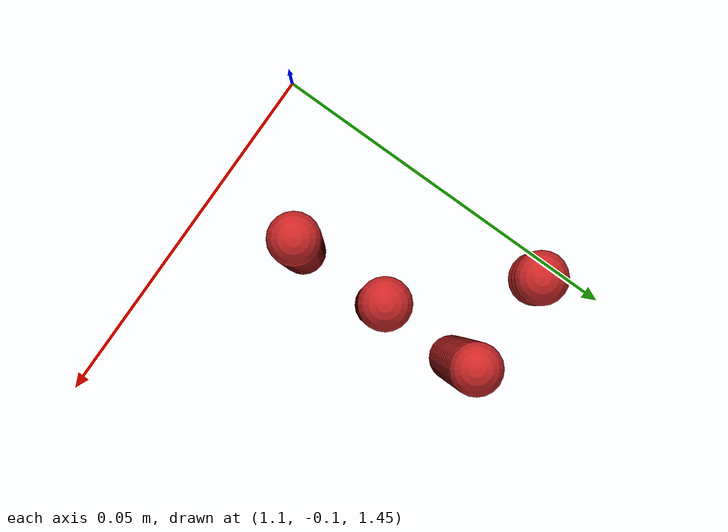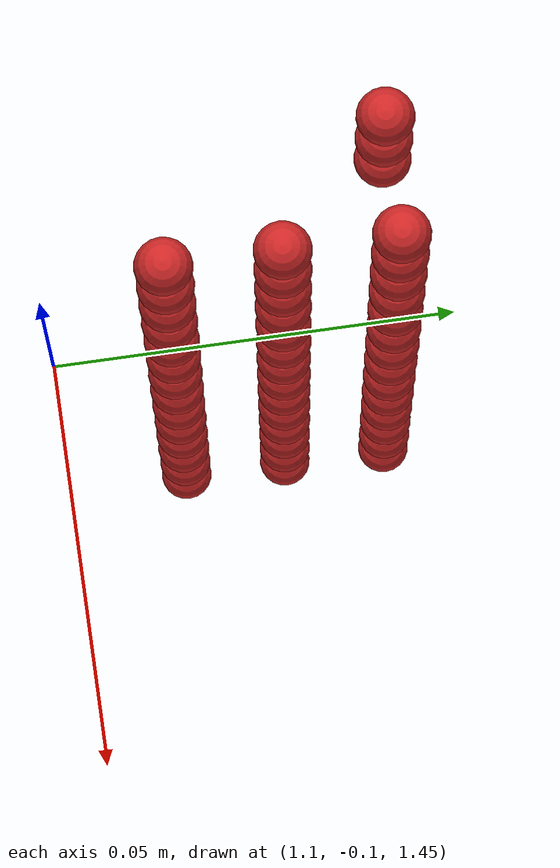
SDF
<sdf version="1.4">
 <world name="default">
  <model name="ground_plane">
   <static>1</static>
   <link name="link">
    <collision name="collision">
     <geometry><plane><normal>0 0 1</normal><size>100 100</size></plane></geometry>
     <surface><friction><ode><mu>100</mu><mu2>50</mu2></ode></friction></surface>
    </collision>
    <visual name="visual">
     <cast_shadows>0</cast_shadows>
     <geometry><plane><normal>0 0 1</normal><size>100 100</size></plane></geometry>
     <material>
      <script><uri>file://media/materials/scripts/gazebo.material</uri><name>Gazebo/Grey</name></script>
     </material>
    </visual>
    <velocity_decay><linear>0</linear><angular>0</angular></velocity_decay>
   </link>
  </model>
  <model name="sphere7">
   <pose>0.558760 -0.042781 0.732288 0 0 0</pose>
   <link name="link">
    <pose>0.558760 -0.042781 0.732288 0 0 0</pose>
    <inertial>
     <mass>0.001</mass>
     <inertia>
      <ixx>0.004</ixx>
      <ixy>0.000000</ixy>
      <ixz>0.000000</ixz>
      <iyy>0.004</iyy>
      <iyz>0.000000</iyz>
      <izz>0.004</izz>
     </inertia>
    </inertial>
    <collision name="collision">
     <surface>
      <contact><ode><kp>10000000000.000000</kp><kd>1</kd></ode></contact>
      <friction><ode><mu>0.01</mu><mu2>0.01</mu2></ode></friction>
     </surface>
     <geometry><sphere><radius>0.003</radius></sphere></geometry>
    </collision>
    <visual name="visual">
     <geometry><sphere><radius>0.003</radius></sphere></geometry>
     <material>
      <script><uri>file://media/materials/scripts/gazebo.material</uri><name>Gazebo/Red</name></script>
     </material>
    </visual>
   </link>
  </model>
  <model name="sphere11">
   <pose>0.558760 -0.036781 0.732288 0 0 0</pose>
   <link name="link">
    <pose>0.558760 -0.036781 0.732288 0 0 0</pose>
    <inertial>
     <mass>0.001</mass>
     <inertia>
      <ixx>0.004</ixx>
      <ixy>0.000000</ixy>
      <ixz>0.000000</ixz>
      <iyy>0.004</iyy>
      <iyz>0.000000</iyz>
      <izz>0.004</izz>
     </inertia>
    </inertial>
    <collision name="collision">
     <surface>
      <contact><ode><kp>10000000000.000000</kp><kd>1</kd></ode></contact>
      <friction><ode><mu>0.01</mu><mu2>0.01</mu2></ode></friction>
     </surface>
     <geometry><sphere><radius>0.003</radius></sphere></geometry>
    </collision>
    <visual name="visual">
     <geometry><sphere><radius>0.003</radius></sphere></geometry>
     <material>
      <script><uri>file://media/materials/scripts/gazebo.material</uri><name>Gazebo/Red</name></script>
     </material>
    </visual>
   </link>
  </model>
  <model name="sphere15">
   <pose>0.558760 -0.030781 0.732288 0 0 0</pose>
   <link name="link">
    <pose>0.558760 -0.030781 0.732288 0 0 0</pose>
    <inertial>
     <mass>0.001</mass>
     <inertia>
      <ixx>0.004</ixx>
      <ixy>0.000000</ixy>
      <ixz>0.000000</ixz>
      <iyy>0.004</iyy>
      <iyz>0.000000</iyz>
      <izz>0.004</izz>
     </inertia>
    </inertial>
    <collision name="collision">
     <surface>
      <contact><ode><kp>10000000000.000000</kp><kd>1</kd></ode></contact>
      <friction><ode><mu>0.01</mu><mu2>0.01</mu2></ode></friction>
     </surface>
     <geometry><sphere><radius>0.003</radius></sphere></geometry>
    </collision>
    <visual name="visual">
     <geometry><sphere><radius>0.003</radius></sphere></geometry>
     <material>
      <script><uri>file://media/materials/scripts/gazebo.material</uri><name>Gazebo/Red</name></script>
     </material>
    </visual>
   </link>
  </model>
  <model name="sphere23">
   <pose>0.558760 -0.042781 0.738288 0 0 0</pose>
   <link name="link">
    <pose>0.558760 -0.042781 0.738288 0 0 0</pose>
    <inertial>
     <mass>0.001</mass>
     <inertia>
      <ixx>0.004</ixx>
      <ixy>0.000000</ixy>
      <ixz>0.000000</ixz>
      <iyy>0.004</iyy>
      <iyz>0.000000</iyz>
      <izz>0.004</izz>
     </inertia>
    </inertial>
    <collision name="collision">
     <surface>
      <contact><ode><kp>10000000000.000000</kp><kd>1</kd></ode></contact>
      <friction><ode><mu>0.01</mu><mu2>0.01</mu2></ode></friction>
     </surface>
     <geometry><sphere><radius>0.003</radius></sphere></geometry>
    </collision>
    <visual name="visual">
     <geometry><sphere><radius>0.003</radius></sphere></geometry>
     <material>
      <script><uri>file://media/materials/scripts/gazebo.material</uri><name>Gazebo/Red</name></script>
     </material>
    </visual>
   </link>
  </model>
  <model name="sphere27">
   <pose>0.558760 -0.036781 0.738288 0 0 0</pose>
   <link name="link">
    <pose>0.558760 -0.036781 0.738288 0 0 0</pose>
    <inertial>
     <mass>0.001</mass>
     <inertia>
      <ixx>0.004</ixx>
      <ixy>0.000000</ixy>
      <ixz>0.000000</ixz>
      <iyy>0.004</iyy>
      <iyz>0.000000</iyz>
      <izz>0.004</izz>
     </inertia>
    </inertial>
    <collision name="collision">
     <surface>
      <contact><ode><kp>10000000000.000000</kp><kd>1</kd></ode></contact>
      <friction><ode><mu>0.01</mu><mu2>0.01</mu2></ode></friction>
     </surface>
     <geometry><sphere><radius>0.003</radius></sphere></geometry>
    </collision>
    <visual name="visual">
     <geometry><sphere><radius>0.003</radius></sphere></geometry>
     <material>
      <script><uri>file://media/materials/scripts/gazebo.material</uri><name>Gazebo/Red</name></script>
     </material>
    </visual>
   </link>
  </model>
  <model name="sphere31">
   <pose>0.558760 -0.030781 0.738288 0 0 0</pose>
   <link name="link">
    <pose>0.558760 -0.030781 0.738288 0 0 0</pose>
    <inertial>
     <mass>0.001</mass>
     <inertia>
      <ixx>0.004</ixx>
      <ixy>0.000000</ixy>
      <ixz>0.000000</ixz>
      <iyy>0.004</iyy>
      <iyz>0.000000</iyz>
      <izz>0.004</izz>
     </inertia>
    </inertial>
    <collision name="collision">
     <surface>
      <contact><ode><kp>10000000000.000000</kp><kd>1</kd></ode></contact>
      <friction><ode><mu>0.01</mu><mu2>0.01</mu2></ode></friction>
     </surface>
     <geometry><sphere><radius>0.003</radius></sphere></geometry>
    </collision>
    <visual name="visual">
     <geometry><sphere><radius>0.003</radius></sphere></geometry>
     <material>
      <script><uri>file://media/materials/scripts/gazebo.material</uri><name>Gazebo/Red</name></script>
     </material>
    </visual>
   </link>
  </model>
  <model name="sphere39">
   <pose>0.558760 -0.042781 0.744288 0 0 0</pose>
   <link name="link">
    <pose>0.558760 -0.042781 0.744288 0 0 0</pose>
    <inertial>
     <mass>0.001</mass>
     <inertia>
      <ixx>0.004</ixx>
      <ixy>0.000000</ixy>
      <ixz>0.000000</ixz>
      <iyy>0.004</iyy>
      <iyz>0.000000</iyz>
      <izz>0.004</izz>
     </inertia>
    </inertial>
    <collision name="collision">
     <surface>
      <contact><ode><kp>10000000000.000000</kp><kd>1</kd></ode></contact>
      <friction><ode><mu>0.01</mu><mu2>0.01</mu2></ode></friction>
     </surface>
     <geometry><sphere><radius>0.003</radius></sphere></geometry>
    </collision>
    <visual name="visual">
     <geometry><sphere><radius>0.003</radius></sphere></geometry>
     <material>
      <script><uri>file://media/materials/scripts/gazebo.material</uri><name>Gazebo/Red</name></script>
     </material>
    </visual>
   </link>
  </model>
  <model name="sphere43">
   <pose>0.558760 -0.036781 0.744288 0 0 0</pose>
   <link name="link">
    <pose>0.558760 -0.036781 0.744288 0 0 0</pose>
    <inertial>
     <mass>0.001</mass>
     <inertia>
      <ixx>0.004</ixx>
      <ixy>0.000000</ixy>
      <ixz>0.000000</ixz>
      <iyy>0.004</iyy>
      <iyz>0.000000</iyz>
      <izz>0.004</izz>
     </inertia>
    </inertial>
    <collision name="collision">
     <surface>
      <contact><ode><kp>10000000000.000000</kp><kd>1</kd></ode></contact>
      <friction><ode><mu>0.01</mu><mu2>0.01</mu2></ode></friction>
     </surface>
     <geometry><sphere><radius>0.003</radius></sphere></geometry>
    </collision>
    <visual name="visual">
     <geometry><sphere><radius>0.003</radius></sphere></geometry>
     <material>
      <script><uri>file://media/materials/scripts/gazebo.material</uri><name>Gazebo/Red</name></script>
     </material>
    </visual>
   </link>
  </model>
  <model name="sphere47">
   <pose>0.558760 -0.030781 0.744288 0 0 0</pose>
   <link name="link">
    <pose>0.558760 -0.030781 0.744288 0 0 0</pose>
    <inertial>
     <mass>0.001</mass>
     <inertia>
      <ixx>0.004</ixx>
      <ixy>0.000000</ixy>
      <ixz>0.000000</ixz>
      <iyy>0.004</iyy>
      <iyz>0.000000</iyz>
      <izz>0.004</izz>
     </inertia>
    </inertial>
    <collision name="collision">
     <surface>
      <contact><ode><kp>10000000000.000000</kp><kd>1</kd></ode></contact>
      <friction><ode><mu>0.01</mu><mu2>0.01</mu2></ode></friction>
     </surface>
     <geometry><sphere><radius>0.003</radius></sphere></geometry>
    </collision>
    <visual name="visual">
     <geometry><sphere><radius>0.003</radius></sphere></geometry>
     <material>
      <script><uri>file://media/materials/scripts/gazebo.material</uri><name>Gazebo/Red</name></script>
     </material>
    </visual>
   </link>
  </model>
  <model name="sphere55">
   <pose>0.558760 -0.042781 0.750288 0 0 0</pose>
   <link name="link">
    <pose>0.558760 -0.042781 0.750288 0 0 0</pose>
    <inertial>
     <mass>0.001</mass>
     <inertia>
      <ixx>0.004</ixx>
      <ixy>0.000000</ixy>
      <ixz>0.000000</ixz>
      <iyy>0.004</iyy>
      <iyz>0.000000</iyz>
      <izz>0.004</izz>
     </inertia>
    </inertial>
    <collision name="collision">
     <surface>
      <contact><ode><kp>10000000000.000000</kp><kd>1</kd></ode></contact>
      <friction><ode><mu>0.01</mu><mu2>0.01</mu2></ode></friction>
     </surface>
     <geometry><sphere><radius>0.003</radius></sphere></geometry>
    </collision>
    <visual name="visual">
     <geometry><sphere><radius>0.003</radius></sphere></geometry>
     <material>
      <script><uri>file://media/materials/scripts/gazebo.material</uri><name>Gazebo/Red</name></script>
     </material>
    </visual>
   </link>
  </model>
  <model name="sphere59">
   <pose>0.558760 -0.036781 0.750288 0 0 0</pose>
   <link name="link">
    <pose>0.558760 -0.036781 0.750288 0 0 0</pose>
    <inertial>
     <mass>0.001</mass>
     <inertia>
      <ixx>0.004</ixx>
      <ixy>0.000000</ixy>
      <ixz>0.000000</ixz>
      <iyy>0.004</iyy>
      <iyz>0.000000</iyz>
      <izz>0.004</izz>
     </inertia>
    </inertial>
    <collision name="collision">
     <surface>
      <contact><ode><kp>10000000000.000000</kp><kd>1</kd></ode></contact>
      <friction><ode><mu>0.01</mu><mu2>0.01</mu2></ode></friction>
     </surface>
     <geometry><sphere><radius>0.003</radius></sphere></geometry>
    </collision>
    <visual name="visual">
     <geometry><sphere><radius>0.003</radius></sphere></geometry>
     <material>
      <script><uri>file://media/materials/scripts/gazebo.material</uri><name>Gazebo/Red</name></script>
     </material>
    </visual>
   </link>
  </model>
  <model name="sphere63">
   <pose>0.558760 -0.030781 0.750288 0 0 0</pose>
   <link name="link">
    <pose>0.558760 -0.030781 0.750288 0 0 0</pose>
    <inertial>
     <mass>0.001</mass>
     <inertia>
      <ixx>0.004</ixx>
      <ixy>0.000000</ixy>
      <ixz>0.000000</ixz>
      <iyy>0.004</iyy>
      <iyz>0.000000</iyz>
      <izz>0.004</izz>
     </inertia>
    </inertial>
    <collision name="collision">
     <surface>
      <contact><ode><kp>10000000000.000000</kp><kd>1</kd></ode></contact>
      <friction><ode><mu>0.01</mu><mu2>0.01</mu2></ode></friction>
     </surface>
     <geometry><sphere><radius>0.003</radius></sphere></geometry>
    </collision>
    <visual name="visual">
     <geometry><sphere><radius>0.003</radius></sphere></geometry>
     <material>
      <script><uri>file://media/materials/scripts/gazebo.material</uri><name>Gazebo/Red</name></script>
     </material>
    </visual>
   </link>
  </model>
  <model name="sphere71">
   <pose>0.558760 -0.042781 0.756288 0 0 0</pose>
   <link name="link">
    <pose>0.558760 -0.042781 0.756288 0 0 0</pose>
    <inertial>
     <mass>0.001</mass>
     <inertia>
      <ixx>0.004</ixx>
      <ixy>0.000000</ixy>
      <ixz>0.000000</ixz>
      <iyy>0.004</iyy>
      <iyz>0.000000</iyz>
      <izz>0.004</izz>
     </inertia>
    </inertial>
    <collision name="collision">
     <surface>
      <contact><ode><kp>10000000000.000000</kp><kd>1</kd></ode></contact>
      <friction><ode><mu>0.01</mu><mu2>0.01</mu2></ode></friction>
     </surface>
     <geometry><sphere><radius>0.003</radius></sphere></geometry>
    </collision>
    <visual name="visual">
     <geometry><sphere><radius>0.003</radius></sphere></geometry>
     <material>
      <script><uri>file://media/materials/scripts/gazebo.material</uri><name>Gazebo/Red</name></script>
     </material>
    </visual>
   </link>
  </model>
  <model name="sphere75">
   <pose>0.558760 -0.036781 0.756288 0 0 0</pose>
   <link name="link">
    <pose>0.558760 -0.036781 0.756288 0 0 0</pose>
    <inertial>
     <mass>0.001</mass>
     <inertia>
      <ixx>0.004</ixx>
      <ixy>0.000000</ixy>
      <ixz>0.000000</ixz>
      <iyy>0.004</iyy>
      <iyz>0.000000</iyz>
      <izz>0.004</izz>
     </inertia>
    </inertial>
    <collision name="collision">
     <surface>
      <contact><ode><kp>10000000000.000000</kp><kd>1</kd></ode></contact>
      <friction><ode><mu>0.01</mu><mu2>0.01</mu2></ode></friction>
     </surface>
     <geometry><sphere><radius>0.003</radius></sphere></geometry>
    </collision>
    <visual name="visual">
     <geometry><sphere><radius>0.003</radius></sphere></geometry>
     <material>
      <script><uri>file://media/materials/scripts/gazebo.material</uri><name>Gazebo/Red</name></script>
     </material>
    </visual>
   </link>
  </model>
  <model name="sphere79">
   <pose>0.558760 -0.030781 0.756288 0 0 0</pose>
   <link name="link">
    <pose>0.558760 -0.030781 0.756288 0 0 0</pose>
    <inertial>
     <mass>0.001</mass>
     <inertia>
      <ixx>0.004</ixx>
      <ixy>0.000000</ixy>
      <ixz>0.000000</ixz>
      <iyy>0.004</iyy>
      <iyz>0.000000</iyz>
      <izz>0.004</izz>
     </inertia>
    </inertial>
    <collision name="collision">
     <surface>
      <contact><ode><kp>10000000000.000000</kp><kd>1</kd></ode></contact>
      <friction><ode><mu>0.01</mu><mu2>0.01</mu2></ode></friction>
     </surface>
     <geometry><sphere><radius>0.003</radius></sphere></geometry>
    </collision>
    <visual name="visual">
     <geometry><sphere><radius>0.003</radius></sphere></geometry>
     <material>
      <script><uri>file://media/materials/scripts/gazebo.material</uri><name>Gazebo/Red</name></script>
     </material>
    </visual>
   </link>
  </model>
  <model name="sphere87">
   <pose>0.558760 -0.042781 0.762288 0 0 0</pose>
   <link name="link">
    <pose>0.558760 -0.042781 0.762288 0 0 0</pose>
    <inertial>
     <mass>0.001</mass>
     <inertia>
      <ixx>0.004</ixx>
      <ixy>0.000000</ixy>
      <ixz>0.000000</ixz>
      <iyy>0.004</iyy>
      <iyz>0.000000</iyz>
      <izz>0.004</izz>
     </inertia>
    </inertial>
    <collision name="collision">
     <surface>
      <contact><ode><kp>10000000000.000000</kp><kd>1</kd></ode></contact>
      <friction><ode><mu>0.01</mu><mu2>0.01</mu2></ode></friction>
     </surface>
     <geometry><sphere><radius>0.003</radius></sphere></geometry>
    </collision>
    <visual name="visual">
     <geometry><sphere><radius>0.003</radius></sphere></geometry>
     <material>
      <script><uri>file://media/materials/scripts/gazebo.material</uri><name>Gazebo/Red</name></script>
     </material>
    </visual>
   </link>
  </model>
  <model name="sphere91">
   <pose>0.558760 -0.036781 0.762288 0 0 0</pose>
   <link name="link">
    <pose>0.558760 -0.036781 0.762288 0 0 0</pose>
    <inertial>
     <mass>0.001</mass>
     <inertia>
      <ixx>0.004</ixx>
      <ixy>0.000000</ixy>
      <ixz>0.000000</ixz>
      <iyy>0.004</iyy>
      <iyz>0.000000</iyz>
      <izz>0.004</izz>
     </inertia>
    </inertial>
    <collision name="collision">
     <surface>
      <contact><ode><kp>10000000000.000000</kp><kd>1</kd></ode></contact>
      <friction><ode><mu>0.01</mu><mu2>0.01</mu2></ode></friction>
     </surface>
     <geometry><sphere><radius>0.003</radius></sphere></geometry>
    </collision>
    <visual name="visual">
     <geometry><sphere><radius>0.003</radius></sphere></geometry>
     <material>
      <script><uri>file://media/materials/scripts/gazebo.material</uri><name>Gazebo/Red</name></script>
     </material>
    </visual>
   </link>
  </model>
  <model name="sphere95">
   <pose>0.558760 -0.030781 0.762288 0 0 0</pose>
   <link name="link">
    <pose>0.558760 -0.030781 0.762288 0 0 0</pose>
    <inertial>
     <mass>0.001</mass>
     <inertia>
      <ixx>0.004</ixx>
      <ixy>0.000000</ixy>
      <ixz>0.000000</ixz>
      <iyy>0.004</iyy>
      <iyz>0.000000</iyz>
      <izz>0.004</izz>
     </inertia>
    </inertial>
    <collision name="collision">
     <surface>
      <contact><ode><kp>10000000000.000000</kp><kd>1</kd></ode></contact>
      <friction><ode><mu>0.01</mu><mu2>0.01</mu2></ode></friction>
     </surface>
     <geometry><sphere><radius>0.003</radius></sphere></geometry>
    </collision>
    <visual name="visual">
     <geometry><sphere><radius>0.003</radius></sphere></geometry>
     <material>
      <script><uri>file://media/materials/scripts/gazebo.material</uri><name>Gazebo/Red</name></script>
     </material>
    </visual>
   </link>
  </model>
  <model name="sphere103">
   <pose>0.558760 -0.042781 0.768288 0 0 0</pose>
   <link name="link">
    <pose>0.558760 -0.042781 0.768288 0 0 0</pose>
    <inertial>
     <mass>0.001</mass>
     <inertia>
      <ixx>0.004</ixx>
      <ixy>0.000000</ixy>
      <ixz>0.000000</ixz>
      <iyy>0.004</iyy>
      <iyz>0.000000</iyz>
      <izz>0.004</izz>
     </inertia>
    </inertial>
    <collision name="collision">
     <surface>
      <contact><ode><kp>10000000000.000000</kp><kd>1</kd></ode></contact>
      <friction><ode><mu>0.01</mu><mu2>0.01</mu2></ode></friction>
     </surface>
     <geometry><sphere><radius>0.003</radius></sphere></geometry>
    </collision>
    <visual name="visual">
     <geometry><sphere><radius>0.003</radius></sphere></geometry>
     <material>
      <script><uri>file://media/materials/scripts/gazebo.material</uri><name>Gazebo/Red</name></script>
     </material>
    </visual>
   </link>
  </model>
  <model name="sphere107">
   <pose>0.558760 -0.036781 0.768288 0 0 0</pose>
   <link name="link">
    <pose>0.558760 -0.036781 0.768288 0 0 0</pose>
    <inertial>
     <mass>0.001</mass>
     <inertia>
      <ixx>0.004</ixx>
      <ixy>0.000000</ixy>
      <ixz>0.000000</ixz>
      <iyy>0.004</iyy>
      <iyz>0.000000</iyz>
      <izz>0.004</izz>
     </inertia>
    </inertial>
    <collision name="collision">
     <surface>
      <contact><ode><kp>10000000000.000000</kp><kd>1</kd></ode></contact>
      <friction><ode><mu>0.01</mu><mu2>0.01</mu2></ode></friction>
     </surface>
     <geometry><sphere><radius>0.003</radius></sphere></geometry>
    </collision>
    <visual name="visual">
     <geometry><sphere><radius>0.003</radius></sphere></geometry>
     <material>
      <script><uri>file://media/materials/scripts/gazebo.material</uri><name>Gazebo/Red</name></script>
     </material>
    </visual>
   </link>
  </model>
  <model name="sphere111">
   <pose>0.558760 -0.030781 0.768288 0 0 0</pose>
   <link name="link">
    <pose>0.558760 -0.030781 0.768288 0 0 0</pose>
    <inertial>
     <mass>0.001</mass>
     <inertia>
      <ixx>0.004</ixx>
      <ixy>0.000000</ixy>
      <ixz>0.000000</ixz>
      <iyy>0.004</iyy>
      <iyz>0.000000</iyz>
      <izz>0.004</izz>
     </inertia>
    </inertial>
    <collision name="collision">
     <surface>
      <contact><ode><kp>10000000000.000000</kp><kd>1</kd></ode></contact>
      <friction><ode><mu>0.01</mu><mu2>0.01</mu2></ode></friction>
     </surface>
     <geometry><sphere><radius>0.003</radius></sphere></geometry>
    </collision>
    <visual name="visual">
     <geometry><sphere><radius>0.003</radius></sphere></geometry>
     <material>
      <script><uri>file://media/materials/scripts/gazebo.material</uri><name>Gazebo/Red</name></script>
     </material>
    </visual>
   </link>
  </model>
  <model name="sphere119">
   <pose>0.558760 -0.042781 0.774288 0 0 0</pose>
   <link name="link">
    <pose>0.558760 -0.042781 0.774288 0 0 0</pose>
    <inertial>
     <mass>0.001</mass>
     <inertia>
      <ixx>0.004</ixx>
      <ixy>0.000000</ixy>
      <ixz>0.000000</ixz>
      <iyy>0.004</iyy>
      <iyz>0.000000</iyz>
      <izz>0.004</izz>
     </inertia>
    </inertial>
    <collision name="collision">
     <surface>
      <contact><ode><kp>10000000000.000000</kp><kd>1</kd></ode></contact>
      <friction><ode><mu>0.01</mu><mu2>0.01</mu2></ode></friction>
     </surface>
     <geometry><sphere><radius>0.003</radius></sphere></geometry>
    </collision>
    <visual name="visual">
     <geometry><sphere><radius>0.003</radius></sphere></geometry>
     <material>
      <script><uri>file://media/materials/scripts/gazebo.material</uri><name>Gazebo/Red</name></script>
     </material>
    </visual>
   </link>
  </model>
  <model name="sphere123">
   <pose>0.558760 -0.036781 0.774288 0 0 0</pose>
   <link name="link">
    <pose>0.558760 -0.036781 0.774288 0 0 0</pose>
    <inertial>
     <mass>0.001</mass>
     <inertia>
      <ixx>0.004</ixx>
      <ixy>0.000000</ixy>
      <ixz>0.000000</ixz>
      <iyy>0.004</iyy>
      <iyz>0.000000</iyz>
      <izz>0.004</izz>
     </inertia>
    </inertial>
    <collision name="collision">
     <surface>
      <contact><ode><kp>10000000000.000000</kp><kd>1</kd></ode></contact>
      <friction><ode><mu>0.01</mu><mu2>0.01</mu2></ode></friction>
     </surface>
     <geometry><sphere><radius>0.003</radius></sphere></geometry>
    </collision>
    <visual name="visual">
     <geometry><sphere><radius>0.003</radius></sphere></geometry>
     <material>
      <script><uri>file://media/materials/scripts/gazebo.material</uri><name>Gazebo/Red</name></script>
     </material>
    </visual>
   </link>
  </model>
  <model name="sphere127">
   <pose>0.558760 -0.030781 0.774288 0 0 0</pose>
   <link name="link">
    <pose>0.558760 -0.030781 0.774288 0 0 0</pose>
    <inertial>
     <mass>0.001</mass>
     <inertia>
      <ixx>0.004</ixx>
      <ixy>0.000000</ixy>
      <ixz>0.000000</ixz>
      <iyy>0.004</iyy>
      <iyz>0.000000</iyz>
      <izz>0.004</izz>
     </inertia>
    </inertial>
    <collision name="collision">
     <surface>
      <contact><ode><kp>10000000000.000000</kp><kd>1</kd></ode></contact>
      <friction><ode><mu>0.01</mu><mu2>0.01</mu2></ode></friction>
     </surface>
     <geometry><sphere><radius>0.003</radius></sphere></geometry>
    </collision>
    <visual name="visual">
     <geometry><sphere><radius>0.003</radius></sphere></geometry>
     <material>
      <script><uri>file://media/materials/scripts/gazebo.material</uri><name>Gazebo/Red</name></script>
     </material>
    </visual>
   </link>
  </model>
  <model name="sphere135">
   <pose>0.558760 -0.042781 0.780288 0 0 0</pose>
   <link name="link">
    <pose>0.558760 -0.042781 0.780288 0 0 0</pose>
    <inertial>
     <mass>0.001</mass>
     <inertia>
      <ixx>0.004</ixx>
      <ixy>0.000000</ixy>
      <ixz>0.000000</ixz>
      <iyy>0.004</iyy>
      <iyz>0.000000</iyz>
      <izz>0.004</izz>
     </inertia>
    </inertial>
    <collision name="collision">
     <surface>
      <contact><ode><kp>10000000000.000000</kp><kd>1</kd></ode></contact>
      <friction><ode><mu>0.01</mu><mu2>0.01</mu2></ode></friction>
     </surface>
     <geometry><sphere><radius>0.003</radius></sphere></geometry>
    </collision>
    <visual name="visual">
     <geometry><sphere><radius>0.003</radius></sphere></geometry>
     <material>
      <script><uri>file://media/materials/scripts/gazebo.material</uri><name>Gazebo/Red</name></script>
     </material>
    </visual>
   </link>
  </model>
  <model name="sphere139">
   <pose>0.558760 -0.036781 0.780288 0 0 0</pose>
   <link name="link">
    <pose>0.558760 -0.036781 0.780288 0 0 0</pose>
    <inertial>
     <mass>0.001</mass>
     <inertia>
      <ixx>0.004</ixx>
      <ixy>0.000000</ixy>
      <ixz>0.000000</ixz>
      <iyy>0.004</iyy>
      <iyz>0.000000</iyz>
      <izz>0.004</izz>
     </inertia>
    </inertial>
    <collision name="collision">
     <surface>
      <contact><ode><kp>10000000000.000000</kp><kd>1</kd></ode></contact>
      <friction><ode><mu>0.01</mu><mu2>0.01</mu2></ode></friction>
     </surface>
     <geometry><sphere><radius>0.003</radius></sphere></geometry>
    </collision>
    <visual name="visual">
     <geometry><sphere><radius>0.003</radius></sphere></geometry>
     <material>
      <script><uri>file://media/materials/scripts/gazebo.material</uri><name>Gazebo/Red</name></script>
     </material>
    </visual>
   </link>
  </model>
  <model name="sphere143">
   <pose>0.558760 -0.030781 0.780288 0 0 0</pose>
   <link name="link">
    <pose>0.558760 -0.030781 0.780288 0 0 0</pose>
    <inertial>
     <mass>0.001</mass>
     <inertia>
      <ixx>0.004</ixx>
      <ixy>0.000000</ixy>
      <ixz>0.000000</ixz>
      <iyy>0.004</iyy>
      <iyz>0.000000</iyz>
      <izz>0.004</izz>
     </inertia>
    </inertial>
    <collision name="collision">
     <surface>
      <contact><ode><kp>10000000000.000000</kp><kd>1</kd></ode></contact>
      <friction><ode><mu>0.01</mu><mu2>0.01</mu2></ode></friction>
     </surface>
     <geometry><sphere><radius>0.003</radius></sphere></geometry>
    </collision>
    <visual name="visual">
     <geometry><sphere><radius>0.003</radius></sphere></geometry>
     <material>
      <script><uri>file://media/materials/scripts/gazebo.material</uri><name>Gazebo/Red</name></script>
     </material>
    </visual>
   </link>
  </model>
  <model name="sphere151">
   <pose>0.558760 -0.042781 0.786288 0 0 0</pose>
   <link name="link">
    <pose>0.558760 -0.042781 0.786288 0 0 0</pose>
    <inertial>
     <mass>0.001</mass>
     <inertia>
      <ixx>0.004</ixx>
      <ixy>0.000000</ixy>
      <ixz>0.000000</ixz>
      <iyy>0.004</iyy>
      <iyz>0.000000</iyz>
      <izz>0.004</izz>
     </inertia>
    </inertial>
    <collision name="collision">
     <surface>
      <contact><ode><kp>10000000000.000000</kp><kd>1</kd></ode></contact>
      <friction><ode><mu>0.01</mu><mu2>0.01</mu2></ode></friction>
     </surface>
     <geometry><sphere><radius>0.003</radius></sphere></geometry>
    </collision>
    <visual name="visual">
     <geometry><sphere><radius>0.003</radius></sphere></geometry>
     <material>
      <script><uri>file://media/materials/scripts/gazebo.material</uri><name>Gazebo/Red</name></script>
     </material>
    </visual>
   </link>
  </model>
  <model name="sphere155">
   <pose>0.558760 -0.036781 0.786288 0 0 0</pose>
   <link name="link">
    <pose>0.558760 -0.036781 0.786288 0 0 0</pose>
    <inertial>
     <mass>0.001</mass>
     <inertia>
      <ixx>0.004</ixx>
      <ixy>0.000000</ixy>
      <ixz>0.000000</ixz>
      <iyy>0.004</iyy>
      <iyz>0.000000</iyz>
      <izz>0.004</izz>
     </inertia>
    </inertial>
    <collision name="collision">
     <surface>
      <contact><ode><kp>10000000000.000000</kp><kd>1</kd></ode></contact>
      <friction><ode><mu>0.01</mu><mu2>0.01</mu2></ode></friction>
     </surface>
     <geometry><sphere><radius>0.003</radius></sphere></geometry>
    </collision>
    <visual name="visual">
     <geometry><sphere><radius>0.003</radius></sphere></geometry>
     <material>
      <script><uri>file://media/materials/scripts/gazebo.material</uri><name>Gazebo/Red</name></script>
     </material>
    </visual>
   </link>
  </model>
  <model name="sphere159">
   <pose>0.558760 -0.030781 0.786288 0 0 0</pose>
   <link name="link">
    <pose>0.558760 -0.030781 0.786288 0 0 0</pose>
    <inertial>
     <mass>0.001</mass>
     <inertia>
      <ixx>0.004</ixx>
      <ixy>0.000000</ixy>
      <ixz>0.000000</ixz>
      <iyy>0.004</iyy>
      <iyz>0.000000</iyz>
      <izz>0.004</izz>
     </inertia>
    </inertial>
    <collision name="collision">
     <surface>
      <contact><ode><kp>10000000000.000000</kp><kd>1</kd></ode></contact>
      <friction><ode><mu>0.01</mu><mu2>0.01</mu2></ode></friction>
     </surface>
     <geometry><sphere><radius>0.003</radius></sphere></geometry>
    </collision>
    <visual name="visual">
     <geometry><sphere><radius>0.003</radius></sphere></geometry>
     <material>
      <script><uri>file://media/materials/scripts/gazebo.material</uri><name>Gazebo/Red</name></script>
     </material>
    </visual>
   </link>
  </model>
  <model name="sphere167">
   <pose>0.558760 -0.042781 0.792288 0 0 0</pose>
   <link name="link">
    <pose>0.558760 -0.042781 0.792288 0 0 0</pose>
    <inertial>
     <mass>0.001</mass>
     <inertia>
      <ixx>0.004</ixx>
      <ixy>0.000000</ixy>
      <ixz>0.000000</ixz>
      <iyy>0.004</iyy>
      <iyz>0.000000</iyz>
      <izz>0.004</izz>
     </inertia>
    </inertial>
    <collision name="collision">
     <surface>
      <contact><ode><kp>10000000000.000000</kp><kd>1</kd></ode></contact>
      <friction><ode><mu>0.01</mu><mu2>0.01</mu2></ode></friction>
     </surface>
     <geometry><sphere><radius>0.003</radius></sphere></geometry>
    </collision>
    <visual name="visual">
     <geometry><sphere><radius>0.003</radius></sphere></geometry>
     <material>
      <script><uri>file://media/materials/scripts/gazebo.material</uri><name>Gazebo/Red</name></script>
     </material>
    </visual>
   </link>
  </model>
  <model name="sphere171">
   <pose>0.558760 -0.036781 0.792288 0 0 0</pose>
   <link name="link">
    <pose>0.558760 -0.036781 0.792288 0 0 0</pose>
    <inertial>
     <mass>0.001</mass>
     <inertia>
      <ixx>0.004</ixx>
      <ixy>0.000000</ixy>
      <ixz>0.000000</ixz>
      <iyy>0.004</iyy>
      <iyz>0.000000</iyz>
      <izz>0.004</izz>
     </inertia>
    </inertial>
    <collision name="collision">
     <surface>
      <contact><ode><kp>10000000000.000000</kp><kd>1</kd></ode></contact>
      <friction><ode><mu>0.01</mu><mu2>0.01</mu2></ode></friction>
     </surface>
     <geometry><sphere><radius>0.003</radius></sphere></geometry>
    </collision>
    <visual name="visual">
     <geometry><sphere><radius>0.003</radius></sphere></geometry>
     <material>
      <script><uri>file://media/materials/scripts/gazebo.material</uri><name>Gazebo/Red</name></script>
     </material>
    </visual>
   </link>
  </model>
  <model name="sphere175">
   <pose>0.558760 -0.030781 0.792288 0 0 0</pose>
   <link name="link">
    <pose>0.558760 -0.030781 0.792288 0 0 0</pose>
    <inertial>
     <mass>0.001</mass>
     <inertia>
      <ixx>0.004</ixx>
      <ixy>0.000000</ixy>
      <ixz>0.000000</ixz>
      <iyy>0.004</iyy>
      <iyz>0.000000</iyz>
      <izz>0.004</izz>
     </inertia>
    </inertial>
    <collision name="collision">
     <surface>
      <contact><ode><kp>10000000000.000000</kp><kd>1</kd></ode></contact>
      <friction><ode><mu>0.01</mu><mu2>0.01</mu2></ode></friction>
     </surface>
     <geometry><sphere><radius>0.003</radius></sphere></geometry>
    </collision>
    <visual name="visual">
     <geometry><sphere><radius>0.003</radius></sphere></geometry>
     <material>
      <script><uri>file://media/materials/scripts/gazebo.material</uri><name>Gazebo/Red</name></script>
     </material>
    </visual>
   </link>
  </model>
  <model name="sphere183">
   <pose>0.558760 -0.042781 0.798288 0 0 0</pose>
   <link name="link">
    <pose>0.558760 -0.042781 0.798288 0 0 0</pose>
    <inertial>
     <mass>0.001</mass>
     <inertia>
      <ixx>0.004</ixx>
      <ixy>0.000000</ixy>
      <ixz>0.000000</ixz>
      <iyy>0.004</iyy>
      <iyz>0.000000</iyz>
      <izz>0.004</izz>
     </inertia>
    </inertial>
    <collision name="collision">
     <surface>
      <contact><ode><kp>10000000000.000000</kp><kd>1</kd></ode></contact>
      <friction><ode><mu>0.01</mu><mu2>0.01</mu2></ode></friction>
     </surface>
     <geometry><sphere><radius>0.003</radius></sphere></geometry>
    </collision>
    <visual name="visual">
     <geometry><sphere><radius>0.003</radius></sphere></geometry>
     <material>
      <script><uri>file://media/materials/scripts/gazebo.material</uri><name>Gazebo/Red</name></script>
     </material>
    </visual>
   </link>
  </model>
  <model name="sphere187">
   <pose>0.558760 -0.036781 0.798288 0 0 0</pose>
   <link name="link">
    <pose>0.558760 -0.036781 0.798288 0 0 0</pose>
    <inertial>
     <mass>0.001</mass>
     <inertia>
      <ixx>0.004</ixx>
      <ixy>0.000000</ixy>
      <ixz>0.000000</ixz>
      <iyy>0.004</iyy>
      <iyz>0.000000</iyz>
      <izz>0.004</izz>
     </inertia>
    </inertial>
    <collision name="collision">
     <surface>
      <contact><ode><kp>10000000000.000000</kp><kd>1</kd></ode></contact>
      <friction><ode><mu>0.01</mu><mu2>0.01</mu2></ode></friction>
     </surface>
     <geometry><sphere><radius>0.003</radius></sphere></geometry>
    </collision>
    <visual name="visual">
     <geometry><sphere><radius>0.003</radius></sphere></geometry>
     <material>
      <script><uri>file://media/materials/scripts/gazebo.material</uri><name>Gazebo/Red</name></script>
     </material>
    </visual>
   </link>
  </model>
  <model name="sphere190">
   <pose>0.552760 -0.030781 0.798288 0 0 0</pose>
   <link name="link">
    <pose>0.552760 -0.030781 0.798288 0 0 0</pose>
    <inertial>
     <mass>0.001</mass>
     <inertia>
      <ixx>0.004</ixx>
      <ixy>0.000000</ixy>
      <ixz>0.000000</ixz>
      <iyy>0.004</iyy>
      <iyz>0.000000</iyz>
      <izz>0.004</izz>
     </inertia>
    </inertial>
    <collision name="collision">
     <surface>
      <contact><ode><kp>10000000000.000000</kp><kd>1</kd></ode></contact>
      <friction><ode><mu>0.01</mu><mu2>0.01</mu2></ode></friction>
     </surface>
     <geometry><sphere><radius>0.003</radius></sphere></geometry>
    </collision>
    <visual name="visual">
     <geometry><sphere><radius>0.003</radius></sphere></geometry>
     <material>
      <script><uri>file://media/materials/scripts/gazebo.material</uri><name>Gazebo/Red</name></script>
     </material>
    </visual>
   </link>
  </model>
  <model name="sphere191">
   <pose>0.558760 -0.030781 0.798288 0 0 0</pose>
   <link name="link">
    <pose>0.558760 -0.030781 0.798288 0 0 0</pose>
    <inertial>
     <mass>0.001</mass>
     <inertia>
      <ixx>0.004</ixx>
      <ixy>0.000000</ixy>
      <ixz>0.000000</ixz>
      <iyy>0.004</iyy>
      <iyz>0.000000</iyz>
      <izz>0.004</izz>
     </inertia>
    </inertial>
    <collision name="collision">
     <surface>
      <contact><ode><kp>10000000000.000000</kp><kd>1</kd></ode></contact>
      <friction><ode><mu>0.01</mu><mu2>0.01</mu2></ode></friction>
     </surface>
     <geometry><sphere><radius>0.003</radius></sphere></geometry>
    </collision>
    <visual name="visual">
     <geometry><sphere><radius>0.003</radius></sphere></geometry>
     <material>
      <script><uri>file://media/materials/scripts/gazebo.material</uri><name>Gazebo/Red</name></script>
     </material>
    </visual>
   </link>
  </model>
  <model name="sphere199">
   <pose>0.558760 -0.042781 0.804288 0 0 0</pose>
   <link name="link">
    <pose>0.558760 -0.042781 0.804288 0 0 0</pose>
    <inertial>
     <mass>0.001</mass>
     <inertia>
      <ixx>0.004</ixx>
      <ixy>0.000000</ixy>
      <ixz>0.000000</ixz>
      <iyy>0.004</iyy>
      <iyz>0.000000</iyz>
      <izz>0.004</izz>
     </inertia>
    </inertial>
    <collision name="collision">
     <surface>
      <contact><ode><kp>10000000000.000000</kp><kd>1</kd></ode></contact>
      <friction><ode><mu>0.01</mu><mu2>0.01</mu2></ode></friction>
     </surface>
     <geometry><sphere><radius>0.003</radius></sphere></geometry>
    </collision>
    <visual name="visual">
     <geometry><sphere><radius>0.003</radius></sphere></geometry>
     <material>
      <script><uri>file://media/materials/scripts/gazebo.material</uri><name>Gazebo/Red</name></script>
     </material>
    </visual>
   </link>
  </model>
  <model name="sphere203">
   <pose>0.558760 -0.036781 0.804288 0 0 0</pose>
   <link name="link">
    <pose>0.558760 -0.036781 0.804288 0 0 0</pose>
    <inertial>
     <mass>0.001</mass>
     <inertia>
      <ixx>0.004</ixx>
      <ixy>0.000000</ixy>
      <ixz>0.000000</ixz>
      <iyy>0.004</iyy>
      <iyz>0.000000</iyz>
      <izz>0.004</izz>
     </inertia>
    </inertial>
    <collision name="collision">
     <surface>
      <contact><ode><kp>10000000000.000000</kp><kd>1</kd></ode></contact>
      <friction><ode><mu>0.01</mu><mu2>0.01</mu2></ode></friction>
     </surface>
     <geometry><sphere><radius>0.003</radius></sphere></geometry>
    </collision>
    <visual name="visual">
     <geometry><sphere><radius>0.003</radius></sphere></geometry>
     <material>
      <script><uri>file://media/materials/scripts/gazebo.material</uri><name>Gazebo/Red</name></script>
     </material>
    </visual>
   </link>
  </model>
  <model name="sphere206">
   <pose>0.552760 -0.030781 0.804288 0 0 0</pose>
   <link name="link">
    <pose>0.552760 -0.030781 0.804288 0 0 0</pose>
    <inertial>
     <mass>0.001</mass>
     <inertia>
      <ixx>0.004</ixx>
      <ixy>0.000000</ixy>
      <ixz>0.000000</ixz>
      <iyy>0.004</iyy>
      <iyz>0.000000</iyz>
      <izz>0.004</izz>
     </inertia>
    </inertial>
    <collision name="collision">
     <surface>
      <contact><ode><kp>10000000000.000000</kp><kd>1</kd></ode></contact>
      <friction><ode><mu>0.01</mu><mu2>0.01</mu2></ode></friction>
     </surface>
     <geometry><sphere><radius>0.003</radius></sphere></geometry>
    </collision>
    <visual name="visual">
     <geometry><sphere><radius>0.003</radius></sphere></geometry>
     <material>
      <script><uri>file://media/materials/scripts/gazebo.material</uri><name>Gazebo/Red</name></script>
     </material>
    </visual>
   </link>
  </model>
  <model name="sphere207">
   <pose>0.558760 -0.030781 0.804288 0 0 0</pose>
   <link name="link">
    <pose>0.558760 -0.030781 0.804288 0 0 0</pose>
    <inertial>
     <mass>0.001</mass>
     <inertia>
      <ixx>0.004</ixx>
      <ixy>0.000000</ixy>
      <ixz>0.000000</ixz>
      <iyy>0.004</iyy>
      <iyz>0.000000</iyz>
      <izz>0.004</izz>
     </inertia>
    </inertial>
    <collision name="collision">
     <surface>
      <contact><ode><kp>10000000000.000000</kp><kd>1</kd></ode></contact>
      <friction><ode><mu>0.01</mu><mu2>0.01</mu2></ode></friction>
     </surface>
     <geometry><sphere><radius>0.003</radius></sphere></geometry>
    </collision>
    <visual name="visual">
     <geometry><sphere><radius>0.003</radius></sphere></geometry>
     <material>
      <script><uri>file://media/materials/scripts/gazebo.material</uri><name>Gazebo/Red</name></script>
     </material>
    </visual>
   </link>
  </model>
  <model name="sphere215">
   <pose>0.558760 -0.042781 0.810288 0 0 0</pose>
   <link name="link">
    <pose>0.558760 -0.042781 0.810288 0 0 0</pose>
    <inertial>
     <mass>0.001</mass>
     <inertia>
      <ixx>0.004</ixx>
      <ixy>0.000000</ixy>
      <ixz>0.000000</ixz>
      <iyy>0.004</iyy>
      <iyz>0.000000</iyz>
      <izz>0.004</izz>
     </inertia>
    </inertial>
    <collision name="collision">
     <surface>
      <contact><ode><kp>10000000000.000000</kp><kd>1</kd></ode></contact>
      <friction><ode><mu>0.01</mu><mu2>0.01</mu2></ode></friction>
     </surface>
     <geometry><sphere><radius>0.003</radius></sphere></geometry>
    </collision>
    <visual name="visual">
     <geometry><sphere><radius>0.003</radius></sphere></geometry>
     <material>
      <script><uri>file://media/materials/scripts/gazebo.material</uri><name>Gazebo/Red</name></script>
     </material>
    </visual>
   </link>
  </model>
  <model name="sphere219">
   <pose>0.558760 -0.036781 0.810288 0 0 0</pose>
   <link name="link">
    <pose>0.558760 -0.036781 0.810288 0 0 0</pose>
    <inertial>
     <mass>0.001</mass>
     <inertia>
      <ixx>0.004</ixx>
      <ixy>0.000000</ixy>
      <ixz>0.000000</ixz>
      <iyy>0.004</iyy>
      <iyz>0.000000</iyz>
      <izz>0.004</izz>
     </inertia>
    </inertial>
    <collision name="collision">
     <surface>
      <contact><ode><kp>10000000000.000000</kp><kd>1</kd></ode></contact>
      <friction><ode><mu>0.01</mu><mu2>0.01</mu2></ode></friction>
     </surface>
     <geometry><sphere><radius>0.003</radius></sphere></geometry>
    </collision>
    <visual name="visual">
     <geometry><sphere><radius>0.003</radius></sphere></geometry>
     <material>
      <script><uri>file://media/materials/scripts/gazebo.material</uri><name>Gazebo/Red</name></script>
     </material>
    </visual>
   </link>
  </model>
  <model name="sphere222">
   <pose>0.552760 -0.030781 0.810288 0 0 0</pose>
   <link name="link">
    <pose>0.552760 -0.030781 0.810288 0 0 0</pose>
    <inertial>
     <mass>0.001</mass>
     <inertia>
      <ixx>0.004</ixx>
      <ixy>0.000000</ixy>
      <ixz>0.000000</ixz>
      <iyy>0.004</iyy>
      <iyz>0.000000</iyz>
      <izz>0.004</izz>
     </inertia>
    </inertial>
    <collision name="collision">
     <surface>
      <contact><ode><kp>10000000000.000000</kp><kd>1</kd></ode></contact>
      <friction><ode><mu>0.01</mu><mu2>0.01</mu2></ode></friction>
     </surface>
     <geometry><sphere><radius>0.003</radius></sphere></geometry>
    </collision>
    <visual name="visual">
     <geometry><sphere><radius>0.003</radius></sphere></geometry>
     <material>
      <script><uri>file://media/materials/scripts/gazebo.material</uri><name>Gazebo/Red</name></script>
     </material>
    </visual>
   </link>
  </model>
  <model name="sphere223">
   <pose>0.558760 -0.030781 0.810288 0 0 0</pose>
   <link name="link">
    <pose>0.558760 -0.030781 0.810288 0 0 0</pose>
    <inertial>
     <mass>0.001</mass>
     <inertia>
      <ixx>0.004</ixx>
      <ixy>0.000000</ixy>
      <ixz>0.000000</ixz>
      <iyy>0.004</iyy>
      <iyz>0.000000</iyz>
      <izz>0.004</izz>
     </inertia>
    </inertial>
    <collision name="collision">
     <surface>
      <contact><ode><kp>10000000000.000000</kp><kd>1</kd></ode></contact>
      <friction><ode><mu>0.01</mu><mu2>0.01</mu2></ode></friction>
     </surface>
     <geometry><sphere><radius>0.003</radius></sphere></geometry>
    </collision>
    <visual name="visual">
     <geometry><sphere><radius>0.003</radius></sphere></geometry>
     <material>
      <script><uri>file://media/materials/scripts/gazebo.material</uri><name>Gazebo/Red</name></script>
     </material>
    </visual>
   </link>
  </model>
 </world>
</sdf>
